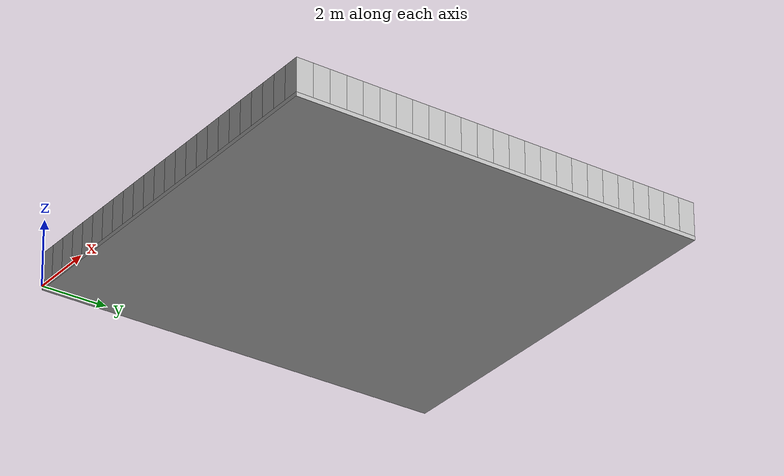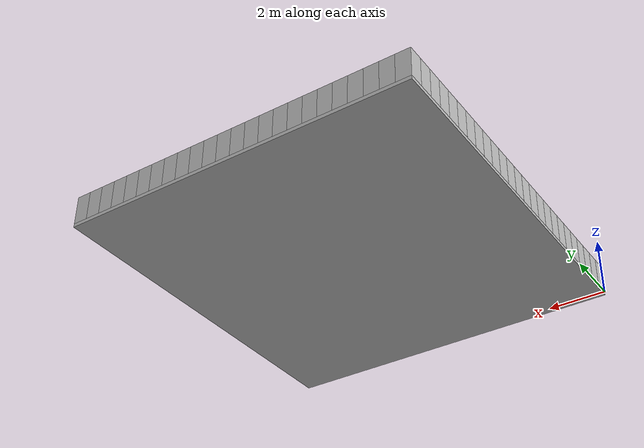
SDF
<sdf version="1.5">
  <model name="map">
    <static>1</static>
    <link name="map">
      <collision name="floor">
        <pose>6.0 6.25 -0.0625 0 0 0</pose>
        <geometry>
          <box>
            <size>12.0 12.5 0.125</size>
          </box>
        </geometry>
      </collision>
      <visual name="floor">
        <pose>6.0 6.25 -0.0625 0 0 0</pose>
        <geometry>
          <box>
            <size>12.0 12.5 0.125</size>
          </box>
        </geometry>
      </visual>
      <collision name="box_0_0">
        <pose>0.25 0.25 0.5 0 0 0</pose>
        <geometry>
          <box>
            <size>0.5 0.5 1.0</size>
          </box>
        </geometry>
      </collision>
      <visual name="box_0_0">
        <pose>0.25 0.25 0.5 0 0 0</pose>
        <geometry>
          <box>
            <size>0.5 0.5 1.0</size>
          </box>
        </geometry>
      </visual>
      <collision name="box_0_1">
        <pose>0.25 0.75 0.5 0 0 0</pose>
        <geometry>
          <box>
            <size>0.5 0.5 1.0</size>
          </box>
        </geometry>
      </collision>
      <visual name="box_0_1">
        <pose>0.25 0.75 0.5 0 0 0</pose>
        <geometry>
          <box>
            <size>0.5 0.5 1.0</size>
          </box>
        </geometry>
      </visual>
      <collision name="box_0_2">
        <pose>0.25 1.25 0.5 0 0 0</pose>
        <geometry>
          <box>
            <size>0.5 0.5 1.0</size>
          </box>
        </geometry>
      </collision>
      <visual name="box_0_2">
        <pose>0.25 1.25 0.5 0 0 0</pose>
        <geometry>
          <box>
            <size>0.5 0.5 1.0</size>
          </box>
        </geometry>
      </visual>
      <collision name="box_0_3">
        <pose>0.25 1.75 0.5 0 0 0</pose>
        <geometry>
          <box>
            <size>0.5 0.5 1.0</size>
          </box>
        </geometry>
      </collision>
      <visual name="box_0_3">
        <pose>0.25 1.75 0.5 0 0 0</pose>
        <geometry>
          <box>
            <size>0.5 0.5 1.0</size>
          </box>
        </geometry>
      </visual>
      <collision name="box_0_4">
        <pose>0.25 2.25 0.5 0 0 0</pose>
        <geometry>
          <box>
            <size>0.5 0.5 1.0</size>
          </box>
        </geometry>
      </collision>
      <visual name="box_0_4">
        <pose>0.25 2.25 0.5 0 0 0</pose>
        <geometry>
          <box>
            <size>0.5 0.5 1.0</size>
          </box>
        </geometry>
      </visual>
      <collision name="box_0_5">
        <pose>0.25 2.75 0.5 0 0 0</pose>
        <geometry>
          <box>
            <size>0.5 0.5 1.0</size>
          </box>
        </geometry>
      </collision>
      <visual name="box_0_5">
        <pose>0.25 2.75 0.5 0 0 0</pose>
        <geometry>
          <box>
            <size>0.5 0.5 1.0</size>
          </box>
        </geometry>
      </visual>
      <collision name="box_0_6">
        <pose>0.25 3.25 0.5 0 0 0</pose>
        <geometry>
          <box>
            <size>0.5 0.5 1.0</size>
          </box>
        </geometry>
      </collision>
      <visual name="box_0_6">
        <pose>0.25 3.25 0.5 0 0 0</pose>
        <geometry>
          <box>
            <size>0.5 0.5 1.0</size>
          </box>
        </geometry>
      </visual>
      <collision name="box_0_7">
        <pose>0.25 3.75 0.5 0 0 0</pose>
        <geometry>
          <box>
            <size>0.5 0.5 1.0</size>
          </box>
        </geometry>
      </collision>
      <visual name="box_0_7">
        <pose>0.25 3.75 0.5 0 0 0</pose>
        <geometry>
          <box>
            <size>0.5 0.5 1.0</size>
          </box>
        </geometry>
      </visual>
      <collision name="box_0_8">
        <pose>0.25 4.25 0.5 0 0 0</pose>
        <geometry>
          <box>
            <size>0.5 0.5 1.0</size>
          </box>
        </geometry>
      </collision>
      <visual name="box_0_8">
        <pose>0.25 4.25 0.5 0 0 0</pose>
        <geometry>
          <box>
            <size>0.5 0.5 1.0</size>
          </box>
        </geometry>
      </visual>
      <collision name="box_0_9">
        <pose>0.25 4.75 0.5 0 0 0</pose>
        <geometry>
          <box>
            <size>0.5 0.5 1.0</size>
          </box>
        </geometry>
      </collision>
      <visual name="box_0_9">
        <pose>0.25 4.75 0.5 0 0 0</pose>
        <geometry>
          <box>
            <size>0.5 0.5 1.0</size>
          </box>
        </geometry>
      </visual>
      <collision name="box_0_10">
        <pose>0.25 5.25 0.5 0 0 0</pose>
        <geometry>
          <box>
            <size>0.5 0.5 1.0</size>
          </box>
        </geometry>
      </collision>
      <visual name="box_0_10">
        <pose>0.25 5.25 0.5 0 0 0</pose>
        <geometry>
          <box>
            <size>0.5 0.5 1.0</size>
          </box>
        </geometry>
      </visual>
      <collision name="box_0_11">
        <pose>0.25 5.75 0.5 0 0 0</pose>
        <geometry>
          <box>
            <size>0.5 0.5 1.0</size>
          </box>
        </geometry>
      </collision>
      <visual name="box_0_11">
        <pose>0.25 5.75 0.5 0 0 0</pose>
        <geometry>
          <box>
            <size>0.5 0.5 1.0</size>
          </box>
        </geometry>
      </visual>
      <collision name="box_0_12">
        <pose>0.25 6.25 0.5 0 0 0</pose>
        <geometry>
          <box>
            <size>0.5 0.5 1.0</size>
          </box>
        </geometry>
      </collision>
      <visual name="box_0_12">
        <pose>0.25 6.25 0.5 0 0 0</pose>
        <geometry>
          <box>
            <size>0.5 0.5 1.0</size>
          </box>
        </geometry>
      </visual>
      <collision name="box_0_13">
        <pose>0.25 6.75 0.5 0 0 0</pose>
        <geometry>
          <box>
            <size>0.5 0.5 1.0</size>
          </box>
        </geometry>
      </collision>
      <visual name="box_0_13">
        <pose>0.25 6.75 0.5 0 0 0</pose>
        <geometry>
          <box>
            <size>0.5 0.5 1.0</size>
          </box>
        </geometry>
      </visual>
      <collision name="box_0_14">
        <pose>0.25 7.25 0.5 0 0 0</pose>
        <geometry>
          <box>
            <size>0.5 0.5 1.0</size>
          </box>
        </geometry>
      </collision>
      <visual name="box_0_14">
        <pose>0.25 7.25 0.5 0 0 0</pose>
        <geometry>
          <box>
            <size>0.5 0.5 1.0</size>
          </box>
        </geometry>
      </visual>
      <collision name="box_0_15">
        <pose>0.25 7.75 0.5 0 0 0</pose>
        <geometry>
          <box>
            <size>0.5 0.5 1.0</size>
          </box>
        </geometry>
      </collision>
      <visual name="box_0_15">
        <pose>0.25 7.75 0.5 0 0 0</pose>
        <geometry>
          <box>
            <size>0.5 0.5 1.0</size>
          </box>
        </geometry>
      </visual>
      <collision name="box_0_16">
        <pose>0.25 8.25 0.5 0 0 0</pose>
        <geometry>
          <box>
            <size>0.5 0.5 1.0</size>
          </box>
        </geometry>
      </collision>
      <visual name="box_0_16">
        <pose>0.25 8.25 0.5 0 0 0</pose>
        <geometry>
          <box>
            <size>0.5 0.5 1.0</size>
          </box>
        </geometry>
      </visual>
      <collision name="box_0_17">
        <pose>0.25 8.75 0.5 0 0 0</pose>
        <geometry>
          <box>
            <size>0.5 0.5 1.0</size>
          </box>
        </geometry>
      </collision>
      <visual name="box_0_17">
        <pose>0.25 8.75 0.5 0 0 0</pose>
        <geometry>
          <box>
            <size>0.5 0.5 1.0</size>
          </box>
        </geometry>
      </visual>
      <collision name="box_0_18">
        <pose>0.25 9.25 0.5 0 0 0</pose>
        <geometry>
          <box>
            <size>0.5 0.5 1.0</size>
          </box>
        </geometry>
      </collision>
      <visual name="box_0_18">
        <pose>0.25 9.25 0.5 0 0 0</pose>
        <geometry>
          <box>
            <size>0.5 0.5 1.0</size>
          </box>
        </geometry>
      </visual>
      <collision name="box_0_19">
        <pose>0.25 9.75 0.5 0 0 0</pose>
        <geometry>
          <box>
            <size>0.5 0.5 1.0</size>
          </box>
        </geometry>
      </collision>
      <visual name="box_0_19">
        <pose>0.25 9.75 0.5 0 0 0</pose>
        <geometry>
          <box>
            <size>0.5 0.5 1.0</size>
          </box>
        </geometry>
      </visual>
      <collision name="box_0_20">
        <pose>0.25 10.25 0.5 0 0 0</pose>
        <geometry>
          <box>
            <size>0.5 0.5 1.0</size>
          </box>
        </geometry>
      </collision>
      <visual name="box_0_20">
        <pose>0.25 10.25 0.5 0 0 0</pose>
        <geometry>
          <box>
            <size>0.5 0.5 1.0</size>
          </box>
        </geometry>
      </visual>
      <collision name="box_0_21">
        <pose>0.25 10.75 0.5 0 0 0</pose>
        <geometry>
          <box>
            <size>0.5 0.5 1.0</size>
          </box>
        </geometry>
      </collision>
      <visual name="box_0_21">
        <pose>0.25 10.75 0.5 0 0 0</pose>
        <geometry>
          <box>
            <size>0.5 0.5 1.0</size>
          </box>
        </geometry>
      </visual>
      <collision name="box_0_22">
        <pose>0.25 11.25 0.5 0 0 0</pose>
        <geometry>
          <box>
            <size>0.5 0.5 1.0</size>
          </box>
        </geometry>
      </collision>
      <visual name="box_0_22">
        <pose>0.25 11.25 0.5 0 0 0</pose>
        <geometry>
          <box>
            <size>0.5 0.5 1.0</size>
          </box>
        </geometry>
      </visual>
      <collision name="box_0_23">
        <pose>0.25 11.75 0.5 0 0 0</pose>
        <geometry>
          <box>
            <size>0.5 0.5 1.0</size>
          </box>
        </geometry>
      </collision>
      <visual name="box_0_23">
        <pose>0.25 11.75 0.5 0 0 0</pose>
        <geometry>
          <box>
            <size>0.5 0.5 1.0</size>
          </box>
        </geometry>
      </visual>
      <collision name="box_0_24">
        <pose>0.25 12.25 0.5 0 0 0</pose>
        <geometry>
          <box>
            <size>0.5 0.5 1.0</size>
          </box>
        </geometry>
      </collision>
      <visual name="box_0_24">
        <pose>0.25 12.25 0.5 0 0 0</pose>
        <geometry>
          <box>
            <size>0.5 0.5 1.0</size>
          </box>
        </geometry>
      </visual>
      <collision name="box_1_0">
        <pose>0.75 0.25 0.5 0 0 0</pose>
        <geometry>
          <box>
            <size>0.5 0.5 1.0</size>
          </box>
        </geometry>
      </collision>
      <visual name="box_1_0">
        <pose>0.75 0.25 0.5 0 0 0</pose>
        <geometry>
          <box>
            <size>0.5 0.5 1.0</size>
          </box>
        </geometry>
      </visual>
      <collision name="box_1_12">
        <pose>0.75 6.25 0.5 0 0 0</pose>
        <geometry>
          <box>
            <size>0.5 0.5 1.0</size>
          </box>
        </geometry>
      </collision>
      <visual name="box_1_12">
        <pose>0.75 6.25 0.5 0 0 0</pose>
        <geometry>
          <box>
            <size>0.5 0.5 1.0</size>
          </box>
        </geometry>
      </visual>
      <collision name="box_1_24">
        <pose>0.75 12.25 0.5 0 0 0</pose>
        <geometry>
          <box>
            <size>0.5 0.5 1.0</size>
          </box>
        </geometry>
      </collision>
      <visual name="box_1_24">
        <pose>0.75 12.25 0.5 0 0 0</pose>
        <geometry>
          <box>
            <size>0.5 0.5 1.0</size>
          </box>
        </geometry>
      </visual>
      <collision name="box_2_0">
        <pose>1.25 0.25 0.5 0 0 0</pose>
        <geometry>
          <box>
            <size>0.5 0.5 1.0</size>
          </box>
        </geometry>
      </collision>
      <visual name="box_2_0">
        <pose>1.25 0.25 0.5 0 0 0</pose>
        <geometry>
          <box>
            <size>0.5 0.5 1.0</size>
          </box>
        </geometry>
      </visual>
      <collision name="box_2_12">
        <pose>1.25 6.25 0.5 0 0 0</pose>
        <geometry>
          <box>
            <size>0.5 0.5 1.0</size>
          </box>
        </geometry>
      </collision>
      <visual name="box_2_12">
        <pose>1.25 6.25 0.5 0 0 0</pose>
        <geometry>
          <box>
            <size>0.5 0.5 1.0</size>
          </box>
        </geometry>
      </visual>
      <collision name="box_2_24">
        <pose>1.25 12.25 0.5 0 0 0</pose>
        <geometry>
          <box>
            <size>0.5 0.5 1.0</size>
          </box>
        </geometry>
      </collision>
      <visual name="box_2_24">
        <pose>1.25 12.25 0.5 0 0 0</pose>
        <geometry>
          <box>
            <size>0.5 0.5 1.0</size>
          </box>
        </geometry>
      </visual>
      <collision name="box_3_0">
        <pose>1.75 0.25 0.5 0 0 0</pose>
        <geometry>
          <box>
            <size>0.5 0.5 1.0</size>
          </box>
        </geometry>
      </collision>
      <visual name="box_3_0">
        <pose>1.75 0.25 0.5 0 0 0</pose>
        <geometry>
          <box>
            <size>0.5 0.5 1.0</size>
          </box>
        </geometry>
      </visual>
      <collision name="box_3_12">
        <pose>1.75 6.25 0.5 0 0 0</pose>
        <geometry>
          <box>
            <size>0.5 0.5 1.0</size>
          </box>
        </geometry>
      </collision>
      <visual name="box_3_12">
        <pose>1.75 6.25 0.5 0 0 0</pose>
        <geometry>
          <box>
            <size>0.5 0.5 1.0</size>
          </box>
        </geometry>
      </visual>
      <collision name="box_3_24">
        <pose>1.75 12.25 0.5 0 0 0</pose>
        <geometry>
          <box>
            <size>0.5 0.5 1.0</size>
          </box>
        </geometry>
      </collision>
      <visual name="box_3_24">
        <pose>1.75 12.25 0.5 0 0 0</pose>
        <geometry>
          <box>
            <size>0.5 0.5 1.0</size>
          </box>
        </geometry>
      </visual>
      <collision name="box_4_0">
        <pose>2.25 0.25 0.5 0 0 0</pose>
        <geometry>
          <box>
            <size>0.5 0.5 1.0</size>
          </box>
        </geometry>
      </collision>
      <visual name="box_4_0">
        <pose>2.25 0.25 0.5 0 0 0</pose>
        <geometry>
          <box>
            <size>0.5 0.5 1.0</size>
          </box>
        </geometry>
      </visual>
      <collision name="box_4_12">
        <pose>2.25 6.25 0.5 0 0 0</pose>
        <geometry>
          <box>
            <size>0.5 0.5 1.0</size>
          </box>
        </geometry>
      </collision>
      <visual name="box_4_12">
        <pose>2.25 6.25 0.5 0 0 0</pose>
        <geometry>
          <box>
            <size>0.5 0.5 1.0</size>
          </box>
        </geometry>
      </visual>
      <collision name="box_4_24">
        <pose>2.25 12.25 0.5 0 0 0</pose>
        <geometry>
          <box>
            <size>0.5 0.5 1.0</size>
          </box>
        </geometry>
      </collision>
      <visual name="box_4_24">
        <pose>2.25 12.25 0.5 0 0 0</pose>
        <geometry>
          <box>
            <size>0.5 0.5 1.0</size>
          </box>
        </geometry>
      </visual>
      <collision name="box_5_0">
        <pose>2.75 0.25 0.5 0 0 0</pose>
        <geometry>
          <box>
            <size>0.5 0.5 1.0</size>
          </box>
        </geometry>
      </collision>
      <visual name="box_5_0">
        <pose>2.75 0.25 0.5 0 0 0</pose>
        <geometry>
          <box>
            <size>0.5 0.5 1.0</size>
          </box>
        </geometry>
      </visual>
      <collision name="box_5_12">
        <pose>2.75 6.25 0.5 0 0 0</pose>
        <geometry>
          <box>
            <size>0.5 0.5 1.0</size>
          </box>
        </geometry>
      </collision>
      <visual name="box_5_12">
        <pose>2.75 6.25 0.5 0 0 0</pose>
        <geometry>
          <box>
            <size>0.5 0.5 1.0</size>
          </box>
        </geometry>
      </visual>
      <collision name="box_5_24">
        <pose>2.75 12.25 0.5 0 0 0</pose>
        <geometry>
          <box>
            <size>0.5 0.5 1.0</size>
          </box>
        </geometry>
      </collision>
      <visual name="box_5_24">
        <pose>2.75 12.25 0.5 0 0 0</pose>
        <geometry>
          <box>
            <size>0.5 0.5 1.0</size>
          </box>
        </geometry>
      </visual>
      <collision name="box_6_0">
        <pose>3.25 0.25 0.5 0 0 0</pose>
        <geometry>
          <box>
            <size>0.5 0.5 1.0</size>
          </box>
        </geometry>
      </collision>
      <visual name="box_6_0">
        <pose>3.25 0.25 0.5 0 0 0</pose>
        <geometry>
          <box>
            <size>0.5 0.5 1.0</size>
          </box>
        </geometry>
      </visual>
      <collision name="box_6_6">
        <pose>3.25 3.25 0.5 0 0 0</pose>
        <geometry>
          <box>
            <size>0.5 0.5 1.0</size>
          </box>
        </geometry>
      </collision>
      <visual name="box_6_6">
        <pose>3.25 3.25 0.5 0 0 0</pose>
        <geometry>
          <box>
            <size>0.5 0.5 1.0</size>
          </box>
        </geometry>
      </visual>
      <collision name="box_6_7">
        <pose>3.25 3.75 0.5 0 0 0</pose>
        <geometry>
          <box>
            <size>0.5 0.5 1.0</size>
          </box>
        </geometry>
      </collision>
      <visual name="box_6_7">
        <pose>3.25 3.75 0.5 0 0 0</pose>
        <geometry>
          <box>
            <size>0.5 0.5 1.0</size>
          </box>
        </geometry>
      </visual>
      <collision name="box_6_8">
        <pose>3.25 4.25 0.5 0 0 0</pose>
        <geometry>
          <box>
            <size>0.5 0.5 1.0</size>
          </box>
        </geometry>
      </collision>
      <visual name="box_6_8">
        <pose>3.25 4.25 0.5 0 0 0</pose>
        <geometry>
          <box>
            <size>0.5 0.5 1.0</size>
          </box>
        </geometry>
      </visual>
      <collision name="box_6_9">
        <pose>3.25 4.75 0.5 0 0 0</pose>
        <geometry>
          <box>
            <size>0.5 0.5 1.0</size>
          </box>
        </geometry>
      </collision>
      <visual name="box_6_9">
        <pose>3.25 4.75 0.5 0 0 0</pose>
        <geometry>
          <box>
            <size>0.5 0.5 1.0</size>
          </box>
        </geometry>
      </visual>
      <collision name="box_6_11">
        <pose>3.25 5.75 0.5 0 0 0</pose>
        <geometry>
          <box>
            <size>0.5 0.5 1.0</size>
          </box>
        </geometry>
      </collision>
      <visual name="box_6_11">
        <pose>3.25 5.75 0.5 0 0 0</pose>
        <geometry>
          <box>
            <size>0.5 0.5 1.0</size>
          </box>
        </geometry>
      </visual>
      <collision name="box_6_12">
        <pose>3.25 6.25 0.5 0 0 0</pose>
        <geometry>
          <box>
            <size>0.5 0.5 1.0</size>
          </box>
        </geometry>
      </collision>
      <visual name="box_6_12">
        <pose>3.25 6.25 0.5 0 0 0</pose>
        <geometry>
          <box>
            <size>0.5 0.5 1.0</size>
          </box>
        </geometry>
      </visual>
      <collision name="box_6_13">
        <pose>3.25 6.75 0.5 0 0 0</pose>
        <geometry>
          <box>
            <size>0.5 0.5 1.0</size>
          </box>
        </geometry>
      </collision>
      <visual name="box_6_13">
        <pose>3.25 6.75 0.5 0 0 0</pose>
        <geometry>
          <box>
            <size>0.5 0.5 1.0</size>
          </box>
        </geometry>
      </visual>
      <collision name="box_6_14">
        <pose>3.25 7.25 0.5 0 0 0</pose>
        <geometry>
          <box>
            <size>0.5 0.5 1.0</size>
          </box>
        </geometry>
      </collision>
      <visual name="box_6_14">
        <pose>3.25 7.25 0.5 0 0 0</pose>
        <geometry>
          <box>
            <size>0.5 0.5 1.0</size>
          </box>
        </geometry>
      </visual>
      <collision name="box_6_15">
        <pose>3.25 7.75 0.5 0 0 0</pose>
        <geometry>
          <box>
            <size>0.5 0.5 1.0</size>
          </box>
        </geometry>
      </collision>
      <visual name="box_6_15">
        <pose>3.25 7.75 0.5 0 0 0</pose>
        <geometry>
          <box>
            <size>0.5 0.5 1.0</size>
          </box>
        </geometry>
      </visual>
      <collision name="box_6_16">
        <pose>3.25 8.25 0.5 0 0 0</pose>
        <geometry>
          <box>
            <size>0.5 0.5 1.0</size>
          </box>
        </geometry>
      </collision>
      <visual name="box_6_16">
        <pose>3.25 8.25 0.5 0 0 0</pose>
        <geometry>
          <box>
            <size>0.5 0.5 1.0</size>
          </box>
        </geometry>
      </visual>
      <collision name="box_6_17">
        <pose>3.25 8.75 0.5 0 0 0</pose>
        <geometry>
          <box>
            <size>0.5 0.5 1.0</size>
          </box>
        </geometry>
      </collision>
      <visual name="box_6_17">
        <pose>3.25 8.75 0.5 0 0 0</pose>
        <geometry>
          <box>
            <size>0.5 0.5 1.0</size>
          </box>
        </geometry>
      </visual>
      <collision name="box_6_18">
        <pose>3.25 9.25 0.5 0 0 0</pose>
        <geometry>
          <box>
            <size>0.5 0.5 1.0</size>
          </box>
        </geometry>
      </collision>
      <visual name="box_6_18">
        <pose>3.25 9.25 0.5 0 0 0</pose>
        <geometry>
          <box>
            <size>0.5 0.5 1.0</size>
          </box>
        </geometry>
      </visual>
      <collision name="box_6_24">
        <pose>3.25 12.25 0.5 0 0 0</pose>
        <geometry>
          <box>
            <size>0.5 0.5 1.0</size>
          </box>
        </geometry>
      </collision>
      <visual name="box_6_24">
        <pose>3.25 12.25 0.5 0 0 0</pose>
        <geometry>
          <box>
            <size>0.5 0.5 1.0</size>
          </box>
        </geometry>
      </visual>
      <collision name="box_7_0">
        <pose>3.75 0.25 0.5 0 0 0</pose>
        <geometry>
          <box>
            <size>0.5 0.5 1.0</size>
          </box>
        </geometry>
      </collision>
      <visual name="box_7_0">
        <pose>3.75 0.25 0.5 0 0 0</pose>
        <geometry>
          <box>
            <size>0.5 0.5 1.0</size>
          </box>
        </geometry>
      </visual>
      <collision name="box_7_7">
        <pose>3.75 3.75 0.5 0 0 0</pose>
        <geometry>
          <box>
            <size>0.5 0.5 1.0</size>
          </box>
        </geometry>
      </collision>
      <visual name="box_7_7">
        <pose>3.75 3.75 0.5 0 0 0</pose>
        <geometry>
          <box>
            <size>0.5 0.5 1.0</size>
          </box>
        </geometry>
      </visual>
      <collision name="box_7_8">
        <pose>3.75 4.25 0.5 0 0 0</pose>
        <geometry>
          <box>
            <size>0.5 0.5 1.0</size>
          </box>
        </geometry>
      </collision>
      <visual name="box_7_8">
        <pose>3.75 4.25 0.5 0 0 0</pose>
        <geometry>
          <box>
            <size>0.5 0.5 1.0</size>
          </box>
        </geometry>
      </visual>
      <collision name="box_7_9">
        <pose>3.75 4.75 0.5 0 0 0</pose>
        <geometry>
          <box>
            <size>0.5 0.5 1.0</size>
          </box>
        </geometry>
      </collision>
      <visual name="box_7_9">
        <pose>3.75 4.75 0.5 0 0 0</pose>
        <geometry>
          <box>
            <size>0.5 0.5 1.0</size>
          </box>
        </geometry>
      </visual>
      <collision name="box_7_24">
        <pose>3.75 12.25 0.5 0 0 0</pose>
        <geometry>
          <box>
            <size>0.5 0.5 1.0</size>
          </box>
        </geometry>
      </collision>
      <visual name="box_7_24">
        <pose>3.75 12.25 0.5 0 0 0</pose>
        <geometry>
          <box>
            <size>0.5 0.5 1.0</size>
          </box>
        </geometry>
      </visual>
      <collision name="box_8_0">
        <pose>4.25 0.25 0.5 0 0 0</pose>
        <geometry>
          <box>
            <size>0.5 0.5 1.0</size>
          </box>
        </geometry>
      </collision>
      <visual name="box_8_0">
        <pose>4.25 0.25 0.5 0 0 0</pose>
        <geometry>
          <box>
            <size>0.5 0.5 1.0</size>
          </box>
        </geometry>
      </visual>
      <collision name="box_8_8">
        <pose>4.25 4.25 0.5 0 0 0</pose>
        <geometry>
          <box>
            <size>0.5 0.5 1.0</size>
          </box>
        </geometry>
      </collision>
      <visual name="box_8_8">
        <pose>4.25 4.25 0.5 0 0 0</pose>
        <geometry>
          <box>
            <size>0.5 0.5 1.0</size>
          </box>
        </geometry>
      </visual>
      <collision name="box_8_9">
        <pose>4.25 4.75 0.5 0 0 0</pose>
        <geometry>
          <box>
            <size>0.5 0.5 1.0</size>
          </box>
        </geometry>
      </collision>
      <visual name="box_8_9">
        <pose>4.25 4.75 0.5 0 0 0</pose>
        <geometry>
          <box>
            <size>0.5 0.5 1.0</size>
          </box>
        </geometry>
      </visual>
      <collision name="box_8_24">
        <pose>4.25 12.25 0.5 0 0 0</pose>
        <geometry>
          <box>
            <size>0.5 0.5 1.0</size>
          </box>
        </geometry>
      </collision>
      <visual name="box_8_24">
        <pose>4.25 12.25 0.5 0 0 0</pose>
        <geometry>
          <box>
            <size>0.5 0.5 1.0</size>
          </box>
        </geometry>
      </visual>
      <collision name="box_9_0">
        <pose>4.75 0.25 0.5 0 0 0</pose>
        <geometry>
          <box>
            <size>0.5 0.5 1.0</size>
          </box>
        </geometry>
      </collision>
      <visual name="box_9_0">
        <pose>4.75 0.25 0.5 0 0 0</pose>
        <geometry>
          <box>
            <size>0.5 0.5 1.0</size>
          </box>
        </geometry>
      </visual>
      <collision name="box_9_8">
        <pose>4.75 4.25 0.5 0 0 0</pose>
        <geometry>
          <box>
            <size>0.5 0.5 1.0</size>
          </box>
        </geometry>
      </collision>
      <visual name="box_9_8">
        <pose>4.75 4.25 0.5 0 0 0</pose>
        <geometry>
          <box>
            <size>0.5 0.5 1.0</size>
          </box>
        </geometry>
      </visual>
      <collision name="box_9_9">
        <pose>4.75 4.75 0.5 0 0 0</pose>
        <geometry>
          <box>
            <size>0.5 0.5 1.0</size>
          </box>
        </geometry>
      </collision>
      <visual name="box_9_9">
        <pose>4.75 4.75 0.5 0 0 0</pose>
        <geometry>
          <box>
            <size>0.5 0.5 1.0</size>
          </box>
        </geometry>
      </visual>
      <collision name="box_9_10">
        <pose>4.75 5.25 0.5 0 0 0</pose>
        <geometry>
          <box>
            <size>0.5 0.5 1.0</size>
          </box>
        </geometry>
      </collision>
      <visual name="box_9_10">
        <pose>4.75 5.25 0.5 0 0 0</pose>
        <geometry>
          <box>
            <size>0.5 0.5 1.0</size>
          </box>
        </geometry>
      </visual>
      <collision name="box_9_11">
        <pose>4.75 5.75 0.5 0 0 0</pose>
        <geometry>
          <box>
            <size>0.5 0.5 1.0</size>
          </box>
        </geometry>
      </collision>
      <visual name="box_9_11">
        <pose>4.75 5.75 0.5 0 0 0</pose>
        <geometry>
          <box>
            <size>0.5 0.5 1.0</size>
          </box>
        </geometry>
      </visual>
      <collision name="box_9_12">
        <pose>4.75 6.25 0.5 0 0 0</pose>
        <geometry>
          <box>
            <size>0.5 0.5 1.0</size>
          </box>
        </geometry>
      </collision>
      <visual name="box_9_12">
        <pose>4.75 6.25 0.5 0 0 0</pose>
        <geometry>
          <box>
            <size>0.5 0.5 1.0</size>
          </box>
        </geometry>
      </visual>
      <collision name="box_9_24">
        <pose>4.75 12.25 0.5 0 0 0</pose>
        <geometry>
          <box>
            <size>0.5 0.5 1.0</size>
          </box>
        </geometry>
      </collision>
      <visual name="box_9_24">
        <pose>4.75 12.25 0.5 0 0 0</pose>
        <geometry>
          <box>
            <size>0.5 0.5 1.0</size>
          </box>
        </geometry>
      </visual>
      <collision name="box_10_0">
        <pose>5.25 0.25 0.5 0 0 0</pose>
        <geometry>
          <box>
            <size>0.5 0.5 1.0</size>
          </box>
        </geometry>
      </collision>
      <visual name="box_10_0">
        <pose>5.25 0.25 0.5 0 0 0</pose>
        <geometry>
          <box>
            <size>0.5 0.5 1.0</size>
          </box>
        </geometry>
      </visual>
      <collision name="box_10_9">
        <pose>5.25 4.75 0.5 0 0 0</pose>
        <geometry>
          <box>
            <size>0.5 0.5 1.0</size>
          </box>
        </geometry>
      </collision>
      <visual name="box_10_9">
        <pose>5.25 4.75 0.5 0 0 0</pose>
        <geometry>
          <box>
            <size>0.5 0.5 1.0</size>
          </box>
        </geometry>
      </visual>
      <collision name="box_10_10">
        <pose>5.25 5.25 0.5 0 0 0</pose>
        <geometry>
          <box>
            <size>0.5 0.5 1.0</size>
          </box>
        </geometry>
      </collision>
      <visual name="box_10_10">
        <pose>5.25 5.25 0.5 0 0 0</pose>
        <geometry>
          <box>
            <size>0.5 0.5 1.0</size>
          </box>
        </geometry>
      </visual>
      <collision name="box_10_11">
        <pose>5.25 5.75 0.5 0 0 0</pose>
        <geometry>
          <box>
            <size>0.5 0.5 1.0</size>
          </box>
        </geometry>
      </collision>
      <visual name="box_10_11">
        <pose>5.25 5.75 0.5 0 0 0</pose>
        <geometry>
          <box>
            <size>0.5 0.5 1.0</size>
          </box>
        </geometry>
      </visual>
      <collision name="box_10_12">
        <pose>5.25 6.25 0.5 0 0 0</pose>
        <geometry>
          <box>
            <size>0.5 0.5 1.0</size>
          </box>
        </geometry>
      </collision>
      <visual name="box_10_12">
        <pose>5.25 6.25 0.5 0 0 0</pose>
        <geometry>
          <box>
            <size>0.5 0.5 1.0</size>
          </box>
        </geometry>
      </visual>
      <collision name="box_10_24">
        <pose>5.25 12.25 0.5 0 0 0</pose>
        <geometry>
          <box>
            <size>0.5 0.5 1.0</size>
          </box>
        </geometry>
      </collision>
      <visual name="box_10_24">
        <pose>5.25 12.25 0.5 0 0 0</pose>
        <geometry>
          <box>
            <size>0.5 0.5 1.0</size>
          </box>
        </geometry>
      </visual>
      <collision name="box_11_0">
        <pose>5.75 0.25 0.5 0 0 0</pose>
        <geometry>
          <box>
            <size>0.5 0.5 1.0</size>
          </box>
        </geometry>
      </collision>
      <visual name="box_11_0">
        <pose>5.75 0.25 0.5 0 0 0</pose>
        <geometry>
          <box>
            <size>0.5 0.5 1.0</size>
          </box>
        </geometry>
      </visual>
      <collision name="box_11_9">
        <pose>5.75 4.75 0.5 0 0 0</pose>
        <geometry>
          <box>
            <size>0.5 0.5 1.0</size>
          </box>
        </geometry>
      </collision>
      <visual name="box_11_9">
        <pose>5.75 4.75 0.5 0 0 0</pose>
        <geometry>
          <box>
            <size>0.5 0.5 1.0</size>
          </box>
        </geometry>
      </visual>
      <collision name="box_11_10">
        <pose>5.75 5.25 0.5 0 0 0</pose>
        <geometry>
          <box>
            <size>0.5 0.5 1.0</size>
          </box>
        </geometry>
      </collision>
      <visual name="box_11_10">
        <pose>5.75 5.25 0.5 0 0 0</pose>
        <geometry>
          <box>
            <size>0.5 0.5 1.0</size>
          </box>
        </geometry>
      </visual>
      <collision name="box_11_11">
        <pose>5.75 5.75 0.5 0 0 0</pose>
        <geometry>
          <box>
            <size>0.5 0.5 1.0</size>
          </box>
        </geometry>
      </collision>
      <visual name="box_11_11">
        <pose>5.75 5.75 0.5 0 0 0</pose>
        <geometry>
          <box>
            <size>0.5 0.5 1.0</size>
          </box>
        </geometry>
      </visual>
      <collision name="box_11_12">
        <pose>5.75 6.25 0.5 0 0 0</pose>
        <geometry>
          <box>
            <size>0.5 0.5 1.0</size>
          </box>
        </geometry>
      </collision>
      <visual name="box_11_12">
        <pose>5.75 6.25 0.5 0 0 0</pose>
        <geometry>
          <box>
            <size>0.5 0.5 1.0</size>
          </box>
        </geometry>
      </visual>
      <collision name="box_11_13">
        <pose>5.75 6.75 0.5 0 0 0</pose>
        <geometry>
          <box>
            <size>0.5 0.5 1.0</size>
          </box>
        </geometry>
      </collision>
      <visual name="box_11_13">
        <pose>5.75 6.75 0.5 0 0 0</pose>
        <geometry>
          <box>
            <size>0.5 0.5 1.0</size>
          </box>
        </geometry>
      </visual>
      <collision name="box_11_24">
        <pose>5.75 12.25 0.5 0 0 0</pose>
        <geometry>
          <box>
            <size>0.5 0.5 1.0</size>
          </box>
        </geometry>
      </collision>
      <visual name="box_11_24">
        <pose>5.75 12.25 0.5 0 0 0</pose>
        <geometry>
          <box>
            <size>0.5 0.5 1.0</size>
          </box>
        </geometry>
      </visual>
      <collision name="box_12_0">
        <pose>6.25 0.25 0.5 0 0 0</pose>
        <geometry>
          <box>
            <size>0.5 0.5 1.0</size>
          </box>
        </geometry>
      </collision>
      <visual name="box_12_0">
        <pose>6.25 0.25 0.5 0 0 0</pose>
        <geometry>
          <box>
            <size>0.5 0.5 1.0</size>
          </box>
        </geometry>
      </visual>
      <collision name="box_12_8">
        <pose>6.25 4.25 0.5 0 0 0</pose>
        <geometry>
          <box>
            <size>0.5 0.5 1.0</size>
          </box>
        </geometry>
      </collision>
      <visual name="box_12_8">
        <pose>6.25 4.25 0.5 0 0 0</pose>
        <geometry>
          <box>
            <size>0.5 0.5 1.0</size>
          </box>
        </geometry>
      </visual>
      <collision name="box_12_9">
        <pose>6.25 4.75 0.5 0 0 0</pose>
        <geometry>
          <box>
            <size>0.5 0.5 1.0</size>
          </box>
        </geometry>
      </collision>
      <visual name="box_12_9">
        <pose>6.25 4.75 0.5 0 0 0</pose>
        <geometry>
          <box>
            <size>0.5 0.5 1.0</size>
          </box>
        </geometry>
      </visual>
      <collision name="box_12_10">
        <pose>6.25 5.25 0.5 0 0 0</pose>
        <geometry>
          <box>
            <size>0.5 0.5 1.0</size>
          </box>
        </geometry>
      </collision>
      <visual name="box_12_10">
        <pose>6.25 5.25 0.5 0 0 0</pose>
        <geometry>
          <box>
            <size>0.5 0.5 1.0</size>
          </box>
        </geometry>
      </visual>
      <collision name="box_12_11">
        <pose>6.25 5.75 0.5 0 0 0</pose>
        <geometry>
          <box>
            <size>0.5 0.5 1.0</size>
          </box>
        </geometry>
      </collision>
      <visual name="box_12_11">
        <pose>6.25 5.75 0.5 0 0 0</pose>
        <geometry>
          <box>
            <size>0.5 0.5 1.0</size>
          </box>
        </geometry>
      </visual>
      <collision name="box_12_12">
        <pose>6.25 6.25 0.5 0 0 0</pose>
        <geometry>
          <box>
            <size>0.5 0.5 1.0</size>
          </box>
        </geometry>
      </collision>
      <visual name="box_12_12">
        <pose>6.25 6.25 0.5 0 0 0</pose>
        <geometry>
          <box>
            <size>0.5 0.5 1.0</size>
          </box>
        </geometry>
      </visual>
      <collision name="box_12_13">
        <pose>6.25 6.75 0.5 0 0 0</pose>
        <geometry>
          <box>
            <size>0.5 0.5 1.0</size>
          </box>
        </geometry>
      </collision>
      <visual name="box_12_13">
        <pose>6.25 6.75 0.5 0 0 0</pose>
        <geometry>
          <box>
            <size>0.5 0.5 1.0</size>
          </box>
        </geometry>
      </visual>
      <collision name="box_12_14">
        <pose>6.25 7.25 0.5 0 0 0</pose>
        <geometry>
          <box>
            <size>0.5 0.5 1.0</size>
          </box>
        </geometry>
      </collision>
      <visual name="box_12_14">
        <pose>6.25 7.25 0.5 0 0 0</pose>
        <geometry>
          <box>
            <size>0.5 0.5 1.0</size>
          </box>
        </geometry>
      </visual>
      <collision name="box_12_24">
        <pose>6.25 12.25 0.5 0 0 0</pose>
        <geometry>
          <box>
            <size>0.5 0.5 1.0</size>
          </box>
        </geometry>
      </collision>
      <visual name="box_12_24">
        <pose>6.25 12.25 0.5 0 0 0</pose>
        <geometry>
          <box>
            <size>0.5 0.5 1.0</size>
          </box>
        </geometry>
      </visual>
      <collision name="box_13_0">
        <pose>6.75 0.25 0.5 0 0 0</pose>
        <geometry>
          <box>
            <size>0.5 0.5 1.0</size>
          </box>
        </geometry>
      </collision>
      <visual name="box_13_0">
        <pose>6.75 0.25 0.5 0 0 0</pose>
        <geometry>
          <box>
            <size>0.5 0.5 1.0</size>
          </box>
        </geometry>
      </visual>
      <collision name="box_13_8">
        <pose>6.75 4.25 0.5 0 0 0</pose>
        <geometry>
          <box>
            <size>0.5 0.5 1.0</size>
          </box>
        </geometry>
      </collision>
      <visual name="box_13_8">
        <pose>6.75 4.25 0.5 0 0 0</pose>
        <geometry>
          <box>
            <size>0.5 0.5 1.0</size>
          </box>
        </geometry>
      </visual>
      <collision name="box_13_9">
        <pose>6.75 4.75 0.5 0 0 0</pose>
        <geometry>
          <box>
            <size>0.5 0.5 1.0</size>
          </box>
        </geometry>
      </collision>
      <visual name="box_13_9">
        <pose>6.75 4.75 0.5 0 0 0</pose>
        <geometry>
          <box>
            <size>0.5 0.5 1.0</size>
          </box>
        </geometry>
      </visual>
      <collision name="box_13_10">
        <pose>6.75 5.25 0.5 0 0 0</pose>
        <geometry>
          <box>
            <size>0.5 0.5 1.0</size>
          </box>
        </geometry>
      </collision>
      <visual name="box_13_10">
        <pose>6.75 5.25 0.5 0 0 0</pose>
        <geometry>
          <box>
            <size>0.5 0.5 1.0</size>
          </box>
        </geometry>
      </visual>
      <collision name="box_13_11">
        <pose>6.75 5.75 0.5 0 0 0</pose>
        <geometry>
          <box>
            <size>0.5 0.5 1.0</size>
          </box>
        </geometry>
      </collision>
      <visual name="box_13_11">
        <pose>6.75 5.75 0.5 0 0 0</pose>
        <geometry>
          <box>
            <size>0.5 0.5 1.0</size>
          </box>
        </geometry>
      </visual>
      <collision name="box_13_14">
        <pose>6.75 7.25 0.5 0 0 0</pose>
        <geometry>
          <box>
            <size>0.5 0.5 1.0</size>
          </box>
        </geometry>
      </collision>
      <visual name="box_13_14">
        <pose>6.75 7.25 0.5 0 0 0</pose>
        <geometry>
          <box>
            <size>0.5 0.5 1.0</size>
          </box>
        </geometry>
      </visual>
      <collision name="box_13_15">
        <pose>6.75 7.75 0.5 0 0 0</pose>
        <geometry>
          <box>
            <size>0.5 0.5 1.0</size>
          </box>
        </geometry>
      </collision>
      <visual name="box_13_15">
        <pose>6.75 7.75 0.5 0 0 0</pose>
        <geometry>
          <box>
            <size>0.5 0.5 1.0</size>
          </box>
        </geometry>
      </visual>
      <collision name="box_13_24">
        <pose>6.75 12.25 0.5 0 0 0</pose>
        <geometry>
          <box>
            <size>0.5 0.5 1.0</size>
          </box>
        </geometry>
      </collision>
      <visual name="box_13_24">
        <pose>6.75 12.25 0.5 0 0 0</pose>
        <geometry>
          <box>
            <size>0.5 0.5 1.0</size>
          </box>
        </geometry>
      </visual>
      <collision name="box_14_0">
        <pose>7.25 0.25 0.5 0 0 0</pose>
        <geometry>
          <box>
            <size>0.5 0.5 1.0</size>
          </box>
        </geometry>
      </collision>
      <visual name="box_14_0">
        <pose>7.25 0.25 0.5 0 0 0</pose>
        <geometry>
          <box>
            <size>0.5 0.5 1.0</size>
          </box>
        </geometry>
      </visual>
      <collision name="box_14_11">
        <pose>7.25 5.75 0.5 0 0 0</pose>
        <geometry>
          <box>
            <size>0.5 0.5 1.0</size>
          </box>
        </geometry>
      </collision>
      <visual name="box_14_11">
        <pose>7.25 5.75 0.5 0 0 0</pose>
        <geometry>
          <box>
            <size>0.5 0.5 1.0</size>
          </box>
        </geometry>
      </visual>
      <collision name="box_14_15">
        <pose>7.25 7.75 0.5 0 0 0</pose>
        <geometry>
          <box>
            <size>0.5 0.5 1.0</size>
          </box>
        </geometry>
      </collision>
      <visual name="box_14_15">
        <pose>7.25 7.75 0.5 0 0 0</pose>
        <geometry>
          <box>
            <size>0.5 0.5 1.0</size>
          </box>
        </geometry>
      </visual>
      <collision name="box_14_16">
        <pose>7.25 8.25 0.5 0 0 0</pose>
        <geometry>
          <box>
            <size>0.5 0.5 1.0</size>
          </box>
        </geometry>
      </collision>
      <visual name="box_14_16">
        <pose>7.25 8.25 0.5 0 0 0</pose>
        <geometry>
          <box>
            <size>0.5 0.5 1.0</size>
          </box>
        </geometry>
      </visual>
      <collision name="box_14_24">
        <pose>7.25 12.25 0.5 0 0 0</pose>
        <geometry>
          <box>
            <size>0.5 0.5 1.0</size>
          </box>
        </geometry>
      </collision>
      <visual name="box_14_24">
        <pose>7.25 12.25 0.5 0 0 0</pose>
        <geometry>
          <box>
            <size>0.5 0.5 1.0</size>
          </box>
        </geometry>
      </visual>
      <collision name="box_15_0">
        <pose>7.75 0.25 0.5 0 0 0</pose>
        <geometry>
          <box>
            <size>0.5 0.5 1.0</size>
          </box>
        </geometry>
      </collision>
      <visual name="box_15_0">
        <pose>7.75 0.25 0.5 0 0 0</pose>
        <geometry>
          <box>
            <size>0.5 0.5 1.0</size>
          </box>
        </geometry>
      </visual>
      <collision name="box_15_16">
        <pose>7.75 8.25 0.5 0 0 0</pose>
        <geometry>
          <box>
            <size>0.5 0.5 1.0</size>
          </box>
        </geometry>
      </collision>
      <visual name="box_15_16">
        <pose>7.75 8.25 0.5 0 0 0</pose>
        <geometry>
          <box>
            <size>0.5 0.5 1.0</size>
          </box>
        </geometry>
      </visual>
      <collision name="box_15_17">
        <pose>7.75 8.75 0.5 0 0 0</pose>
        <geometry>
          <box>
            <size>0.5 0.5 1.0</size>
          </box>
        </geometry>
      </collision>
      <visual name="box_15_17">
        <pose>7.75 8.75 0.5 0 0 0</pose>
        <geometry>
          <box>
            <size>0.5 0.5 1.0</size>
          </box>
        </geometry>
      </visual>
      <collision name="box_15_24">
        <pose>7.75 12.25 0.5 0 0 0</pose>
        <geometry>
          <box>
            <size>0.5 0.5 1.0</size>
          </box>
        </geometry>
      </collision>
      <visual name="box_15_24">
        <pose>7.75 12.25 0.5 0 0 0</pose>
        <geometry>
          <box>
            <size>0.5 0.5 1.0</size>
          </box>
        </geometry>
      </visual>
      <collision name="box_16_0">
        <pose>8.25 0.25 0.5 0 0 0</pose>
        <geometry>
          <box>
            <size>0.5 0.5 1.0</size>
          </box>
        </geometry>
      </collision>
      <visual name="box_16_0">
        <pose>8.25 0.25 0.5 0 0 0</pose>
        <geometry>
          <box>
            <size>0.5 0.5 1.0</size>
          </box>
        </geometry>
      </visual>
      <collision name="box_16_17">
        <pose>8.25 8.75 0.5 0 0 0</pose>
        <geometry>
          <box>
            <size>0.5 0.5 1.0</size>
          </box>
        </geometry>
      </collision>
      <visual name="box_16_17">
        <pose>8.25 8.75 0.5 0 0 0</pose>
        <geometry>
          <box>
            <size>0.5 0.5 1.0</size>
          </box>
        </geometry>
      </visual>
      <collision name="box_16_24">
        <pose>8.25 12.25 0.5 0 0 0</pose>
        <geometry>
          <box>
            <size>0.5 0.5 1.0</size>
          </box>
        </geometry>
      </collision>
      <visual name="box_16_24">
        <pose>8.25 12.25 0.5 0 0 0</pose>
        <geometry>
          <box>
            <size>0.5 0.5 1.0</size>
          </box>
        </geometry>
      </visual>
      <collision name="box_17_0">
        <pose>8.75 0.25 0.5 0 0 0</pose>
        <geometry>
          <box>
            <size>0.5 0.5 1.0</size>
          </box>
        </geometry>
      </collision>
      <visual name="box_17_0">
        <pose>8.75 0.25 0.5 0 0 0</pose>
        <geometry>
          <box>
            <size>0.5 0.5 1.0</size>
          </box>
        </geometry>
      </visual>
      <collision name="box_17_24">
        <pose>8.75 12.25 0.5 0 0 0</pose>
        <geometry>
          <box>
            <size>0.5 0.5 1.0</size>
          </box>
        </geometry>
      </collision>
      <visual name="box_17_24">
        <pose>8.75 12.25 0.5 0 0 0</pose>
        <geometry>
          <box>
            <size>0.5 0.5 1.0</size>
          </box>
        </geometry>
      </visual>
      <collision name="box_18_0">
        <pose>9.25 0.25 0.5 0 0 0</pose>
        <geometry>
          <box>
            <size>0.5 0.5 1.0</size>
          </box>
        </geometry>
      </collision>
      <visual name="box_18_0">
        <pose>9.25 0.25 0.5 0 0 0</pose>
        <geometry>
          <box>
            <size>0.5 0.5 1.0</size>
          </box>
        </geometry>
      </visual>
      <collision name="box_18_24">
        <pose>9.25 12.25 0.5 0 0 0</pose>
        <geometry>
          <box>
            <size>0.5 0.5 1.0</size>
          </box>
        </geometry>
      </collision>
      <visual name="box_18_24">
        <pose>9.25 12.25 0.5 0 0 0</pose>
        <geometry>
          <box>
            <size>0.5 0.5 1.0</size>
          </box>
        </geometry>
      </visual>
      <collision name="box_19_0">
        <pose>9.75 0.25 0.5 0 0 0</pose>
        <geometry>
          <box>
            <size>0.5 0.5 1.0</size>
          </box>
        </geometry>
      </collision>
      <visual name="box_19_0">
        <pose>9.75 0.25 0.5 0 0 0</pose>
        <geometry>
          <box>
            <size>0.5 0.5 1.0</size>
          </box>
        </geometry>
      </visual>
      <collision name="box_19_24">
        <pose>9.75 12.25 0.5 0 0 0</pose>
        <geometry>
          <box>
            <size>0.5 0.5 1.0</size>
          </box>
        </geometry>
      </collision>
      <visual name="box_19_24">
        <pose>9.75 12.25 0.5 0 0 0</pose>
        <geometry>
          <box>
            <size>0.5 0.5 1.0</size>
          </box>
        </geometry>
      </visual>
      <collision name="box_20_0">
        <pose>10.25 0.25 0.5 0 0 0</pose>
        <geometry>
          <box>
            <size>0.5 0.5 1.0</size>
          </box>
        </geometry>
      </collision>
      <visual name="box_20_0">
        <pose>10.25 0.25 0.5 0 0 0</pose>
        <geometry>
          <box>
            <size>0.5 0.5 1.0</size>
          </box>
        </geometry>
      </visual>
      <collision name="box_20_12">
        <pose>10.25 6.25 0.5 0 0 0</pose>
        <geometry>
          <box>
            <size>0.5 0.5 1.0</size>
          </box>
        </geometry>
      </collision>
      <visual name="box_20_12">
        <pose>10.25 6.25 0.5 0 0 0</pose>
        <geometry>
          <box>
            <size>0.5 0.5 1.0</size>
          </box>
        </geometry>
      </visual>
      <collision name="box_20_13">
        <pose>10.25 6.75 0.5 0 0 0</pose>
        <geometry>
          <box>
            <size>0.5 0.5 1.0</size>
          </box>
        </geometry>
      </collision>
      <visual name="box_20_13">
        <pose>10.25 6.75 0.5 0 0 0</pose>
        <geometry>
          <box>
            <size>0.5 0.5 1.0</size>
          </box>
        </geometry>
      </visual>
      <collision name="box_20_24">
        <pose>10.25 12.25 0.5 0 0 0</pose>
        <geometry>
          <box>
            <size>0.5 0.5 1.0</size>
          </box>
        </geometry>
      </collision>
      <visual name="box_20_24">
        <pose>10.25 12.25 0.5 0 0 0</pose>
        <geometry>
          <box>
            <size>0.5 0.5 1.0</size>
          </box>
        </geometry>
      </visual>
      <collision name="box_21_0">
        <pose>10.75 0.25 0.5 0 0 0</pose>
        <geometry>
          <box>
            <size>0.5 0.5 1.0</size>
          </box>
        </geometry>
      </collision>
      <visual name="box_21_0">
        <pose>10.75 0.25 0.5 0 0 0</pose>
        <geometry>
          <box>
            <size>0.5 0.5 1.0</size>
          </box>
        </geometry>
      </visual>
      <collision name="box_21_13">
        <pose>10.75 6.75 0.5 0 0 0</pose>
        <geometry>
          <box>
            <size>0.5 0.5 1.0</size>
          </box>
        </geometry>
      </collision>
      <visual name="box_21_13">
        <pose>10.75 6.75 0.5 0 0 0</pose>
        <geometry>
          <box>
            <size>0.5 0.5 1.0</size>
          </box>
        </geometry>
      </visual>
      <collision name="box_21_14">
        <pose>10.75 7.25 0.5 0 0 0</pose>
        <geometry>
          <box>
            <size>0.5 0.5 1.0</size>
          </box>
        </geometry>
      </collision>
      <visual name="box_21_14">
        <pose>10.75 7.25 0.5 0 0 0</pose>
        <geometry>
          <box>
            <size>0.5 0.5 1.0</size>
          </box>
        </geometry>
      </visual>
      <collision name="box_21_24">
        <pose>10.75 12.25 0.5 0 0 0</pose>
        <geometry>
          <box>
            <size>0.5 0.5 1.0</size>
          </box>
        </geometry>
      </collision>
      <visual name="box_21_24">
        <pose>10.75 12.25 0.5 0 0 0</pose>
        <geometry>
          <box>
            <size>0.5 0.5 1.0</size>
          </box>
        </geometry>
      </visual>
      <collision name="box_22_0">
        <pose>11.25 0.25 0.5 0 0 0</pose>
        <geometry>
          <box>
            <size>0.5 0.5 1.0</size>
          </box>
        </geometry>
      </collision>
      <visual name="box_22_0">
        <pose>11.25 0.25 0.5 0 0 0</pose>
        <geometry>
          <box>
            <size>0.5 0.5 1.0</size>
          </box>
        </geometry>
      </visual>
      <collision name="box_22_13">
        <pose>11.25 6.75 0.5 0 0 0</pose>
        <geometry>
          <box>
            <size>0.5 0.5 1.0</size>
          </box>
        </geometry>
      </collision>
      <visual name="box_22_13">
        <pose>11.25 6.75 0.5 0 0 0</pose>
        <geometry>
          <box>
            <size>0.5 0.5 1.0</size>
          </box>
        </geometry>
      </visual>
      <collision name="box_22_14">
        <pose>11.25 7.25 0.5 0 0 0</pose>
        <geometry>
          <box>
            <size>0.5 0.5 1.0</size>
          </box>
        </geometry>
      </collision>
      <visual name="box_22_14">
        <pose>11.25 7.25 0.5 0 0 0</pose>
        <geometry>
          <box>
            <size>0.5 0.5 1.0</size>
          </box>
        </geometry>
      </visual>
      <collision name="box_22_24">
        <pose>11.25 12.25 0.5 0 0 0</pose>
        <geometry>
          <box>
            <size>0.5 0.5 1.0</size>
          </box>
        </geometry>
      </collision>
      <visual name="box_22_24">
        <pose>11.25 12.25 0.5 0 0 0</pose>
        <geometry>
          <box>
            <size>0.5 0.5 1.0</size>
          </box>
        </geometry>
      </visual>
      <collision name="box_23_0">
        <pose>11.75 0.25 0.5 0 0 0</pose>
        <geometry>
          <box>
            <size>0.5 0.5 1.0</size>
          </box>
        </geometry>
      </collision>
      <visual name="box_23_0">
        <pose>11.75 0.25 0.5 0 0 0</pose>
        <geometry>
          <box>
            <size>0.5 0.5 1.0</size>
          </box>
        </geometry>
      </visual>
      <collision name="box_23_1">
        <pose>11.75 0.75 0.5 0 0 0</pose>
        <geometry>
          <box>
            <size>0.5 0.5 1.0</size>
          </box>
        </geometry>
      </collision>
      <visual name="box_23_1">
        <pose>11.75 0.75 0.5 0 0 0</pose>
        <geometry>
          <box>
            <size>0.5 0.5 1.0</size>
          </box>
        </geometry>
      </visual>
      <collision name="box_23_2">
        <pose>11.75 1.25 0.5 0 0 0</pose>
        <geometry>
          <box>
            <size>0.5 0.5 1.0</size>
          </box>
        </geometry>
      </collision>
      <visual name="box_23_2">
        <pose>11.75 1.25 0.5 0 0 0</pose>
        <geometry>
          <box>
            <size>0.5 0.5 1.0</size>
          </box>
        </geometry>
      </visual>
      <collision name="box_23_3">
        <pose>11.75 1.75 0.5 0 0 0</pose>
        <geometry>
          <box>
            <size>0.5 0.5 1.0</size>
          </box>
        </geometry>
      </collision>
      <visual name="box_23_3">
        <pose>11.75 1.75 0.5 0 0 0</pose>
        <geometry>
          <box>
            <size>0.5 0.5 1.0</size>
          </box>
        </geometry>
      </visual>
      <collision name="box_23_4">
        <pose>11.75 2.25 0.5 0 0 0</pose>
        <geometry>
          <box>
            <size>0.5 0.5 1.0</size>
          </box>
        </geometry>
      </collision>
      <visual name="box_23_4">
        <pose>11.75 2.25 0.5 0 0 0</pose>
        <geometry>
          <box>
            <size>0.5 0.5 1.0</size>
          </box>
        </geometry>
      </visual>
      <collision name="box_23_5">
        <pose>11.75 2.75 0.5 0 0 0</pose>
        <geometry>
          <box>
            <size>0.5 0.5 1.0</size>
          </box>
        </geometry>
      </collision>
      <visual name="box_23_5">
        <pose>11.75 2.75 0.5 0 0 0</pose>
        <geometry>
          <box>
            <size>0.5 0.5 1.0</size>
          </box>
        </geometry>
      </visual>
      <collision name="box_23_6">
        <pose>11.75 3.25 0.5 0 0 0</pose>
        <geometry>
          <box>
            <size>0.5 0.5 1.0</size>
          </box>
        </geometry>
      </collision>
      <visual name="box_23_6">
        <pose>11.75 3.25 0.5 0 0 0</pose>
        <geometry>
          <box>
            <size>0.5 0.5 1.0</size>
          </box>
        </geometry>
      </visual>
      <collision name="box_23_7">
        <pose>11.75 3.75 0.5 0 0 0</pose>
        <geometry>
          <box>
            <size>0.5 0.5 1.0</size>
          </box>
        </geometry>
      </collision>
      <visual name="box_23_7">
        <pose>11.75 3.75 0.5 0 0 0</pose>
        <geometry>
          <box>
            <size>0.5 0.5 1.0</size>
          </box>
        </geometry>
      </visual>
      <collision name="box_23_8">
        <pose>11.75 4.25 0.5 0 0 0</pose>
        <geometry>
          <box>
            <size>0.5 0.5 1.0</size>
          </box>
        </geometry>
      </collision>
      <visual name="box_23_8">
        <pose>11.75 4.25 0.5 0 0 0</pose>
        <geometry>
          <box>
            <size>0.5 0.5 1.0</size>
          </box>
        </geometry>
      </visual>
      <collision name="box_23_9">
        <pose>11.75 4.75 0.5 0 0 0</pose>
        <geometry>
          <box>
            <size>0.5 0.5 1.0</size>
          </box>
        </geometry>
      </collision>
      <visual name="box_23_9">
        <pose>11.75 4.75 0.5 0 0 0</pose>
        <geometry>
          <box>
            <size>0.5 0.5 1.0</size>
          </box>
        </geometry>
      </visual>
      <collision name="box_23_10">
        <pose>11.75 5.25 0.5 0 0 0</pose>
        <geometry>
          <box>
            <size>0.5 0.5 1.0</size>
          </box>
        </geometry>
      </collision>
      <visual name="box_23_10">
        <pose>11.75 5.25 0.5 0 0 0</pose>
        <geometry>
          <box>
            <size>0.5 0.5 1.0</size>
          </box>
        </geometry>
      </visual>
      <collision name="box_23_11">
        <pose>11.75 5.75 0.5 0 0 0</pose>
        <geometry>
          <box>
            <size>0.5 0.5 1.0</size>
          </box>
        </geometry>
      </collision>
      <visual name="box_23_11">
        <pose>11.75 5.75 0.5 0 0 0</pose>
        <geometry>
          <box>
            <size>0.5 0.5 1.0</size>
          </box>
        </geometry>
      </visual>
      <collision name="box_23_12">
        <pose>11.75 6.25 0.5 0 0 0</pose>
        <geometry>
          <box>
            <size>0.5 0.5 1.0</size>
          </box>
        </geometry>
      </collision>
      <visual name="box_23_12">
        <pose>11.75 6.25 0.5 0 0 0</pose>
        <geometry>
          <box>
            <size>0.5 0.5 1.0</size>
          </box>
        </geometry>
      </visual>
      <collision name="box_23_13">
        <pose>11.75 6.75 0.5 0 0 0</pose>
        <geometry>
          <box>
            <size>0.5 0.5 1.0</size>
          </box>
        </geometry>
      </collision>
      <visual name="box_23_13">
        <pose>11.75 6.75 0.5 0 0 0</pose>
        <geometry>
          <box>
            <size>0.5 0.5 1.0</size>
          </box>
        </geometry>
      </visual>
      <collision name="box_23_14">
        <pose>11.75 7.25 0.5 0 0 0</pose>
        <geometry>
          <box>
            <size>0.5 0.5 1.0</size>
          </box>
        </geometry>
      </collision>
      <visual name="box_23_14">
        <pose>11.75 7.25 0.5 0 0 0</pose>
        <geometry>
          <box>
            <size>0.5 0.5 1.0</size>
          </box>
        </geometry>
      </visual>
      <collision name="box_23_15">
        <pose>11.75 7.75 0.5 0 0 0</pose>
        <geometry>
          <box>
            <size>0.5 0.5 1.0</size>
          </box>
        </geometry>
      </collision>
      <visual name="box_23_15">
        <pose>11.75 7.75 0.5 0 0 0</pose>
        <geometry>
          <box>
            <size>0.5 0.5 1.0</size>
          </box>
        </geometry>
      </visual>
      <collision name="box_23_16">
        <pose>11.75 8.25 0.5 0 0 0</pose>
        <geometry>
          <box>
            <size>0.5 0.5 1.0</size>
          </box>
        </geometry>
      </collision>
      <visual name="box_23_16">
        <pose>11.75 8.25 0.5 0 0 0</pose>
        <geometry>
          <box>
            <size>0.5 0.5 1.0</size>
          </box>
        </geometry>
      </visual>
      <collision name="box_23_17">
        <pose>11.75 8.75 0.5 0 0 0</pose>
        <geometry>
          <box>
            <size>0.5 0.5 1.0</size>
          </box>
        </geometry>
      </collision>
      <visual name="box_23_17">
        <pose>11.75 8.75 0.5 0 0 0</pose>
        <geometry>
          <box>
            <size>0.5 0.5 1.0</size>
          </box>
        </geometry>
      </visual>
      <collision name="box_23_18">
        <pose>11.75 9.25 0.5 0 0 0</pose>
        <geometry>
          <box>
            <size>0.5 0.5 1.0</size>
          </box>
        </geometry>
      </collision>
      <visual name="box_23_18">
        <pose>11.75 9.25 0.5 0 0 0</pose>
        <geometry>
          <box>
            <size>0.5 0.5 1.0</size>
          </box>
        </geometry>
      </visual>
      <collision name="box_23_19">
        <pose>11.75 9.75 0.5 0 0 0</pose>
        <geometry>
          <box>
            <size>0.5 0.5 1.0</size>
          </box>
        </geometry>
      </collision>
      <visual name="box_23_19">
        <pose>11.75 9.75 0.5 0 0 0</pose>
        <geometry>
          <box>
            <size>0.5 0.5 1.0</size>
          </box>
        </geometry>
      </visual>
      <collision name="box_23_20">
        <pose>11.75 10.25 0.5 0 0 0</pose>
        <geometry>
          <box>
            <size>0.5 0.5 1.0</size>
          </box>
        </geometry>
      </collision>
      <visual name="box_23_20">
        <pose>11.75 10.25 0.5 0 0 0</pose>
        <geometry>
          <box>
            <size>0.5 0.5 1.0</size>
          </box>
        </geometry>
      </visual>
      <collision name="box_23_21">
        <pose>11.75 10.75 0.5 0 0 0</pose>
        <geometry>
          <box>
            <size>0.5 0.5 1.0</size>
          </box>
        </geometry>
      </collision>
      <visual name="box_23_21">
        <pose>11.75 10.75 0.5 0 0 0</pose>
        <geometry>
          <box>
            <size>0.5 0.5 1.0</size>
          </box>
        </geometry>
      </visual>
      <collision name="box_23_22">
        <pose>11.75 11.25 0.5 0 0 0</pose>
        <geometry>
          <box>
            <size>0.5 0.5 1.0</size>
          </box>
        </geometry>
      </collision>
      <visual name="box_23_22">
        <pose>11.75 11.25 0.5 0 0 0</pose>
        <geometry>
          <box>
            <size>0.5 0.5 1.0</size>
          </box>
        </geometry>
      </visual>
      <collision name="box_23_23">
        <pose>11.75 11.75 0.5 0 0 0</pose>
        <geometry>
          <box>
            <size>0.5 0.5 1.0</size>
          </box>
        </geometry>
      </collision>
      <visual name="box_23_23">
        <pose>11.75 11.75 0.5 0 0 0</pose>
        <geometry>
          <box>
            <size>0.5 0.5 1.0</size>
          </box>
        </geometry>
      </visual>
      <collision name="box_23_24">
        <pose>11.75 12.25 0.5 0 0 0</pose>
        <geometry>
          <box>
            <size>0.5 0.5 1.0</size>
          </box>
        </geometry>
      </collision>
      <visual name="box_23_24">
        <pose>11.75 12.25 0.5 0 0 0</pose>
        <geometry>
          <box>
            <size>0.5 0.5 1.0</size>
          </box>
        </geometry>
      </visual>
    </link>
  </model>
</sdf>
